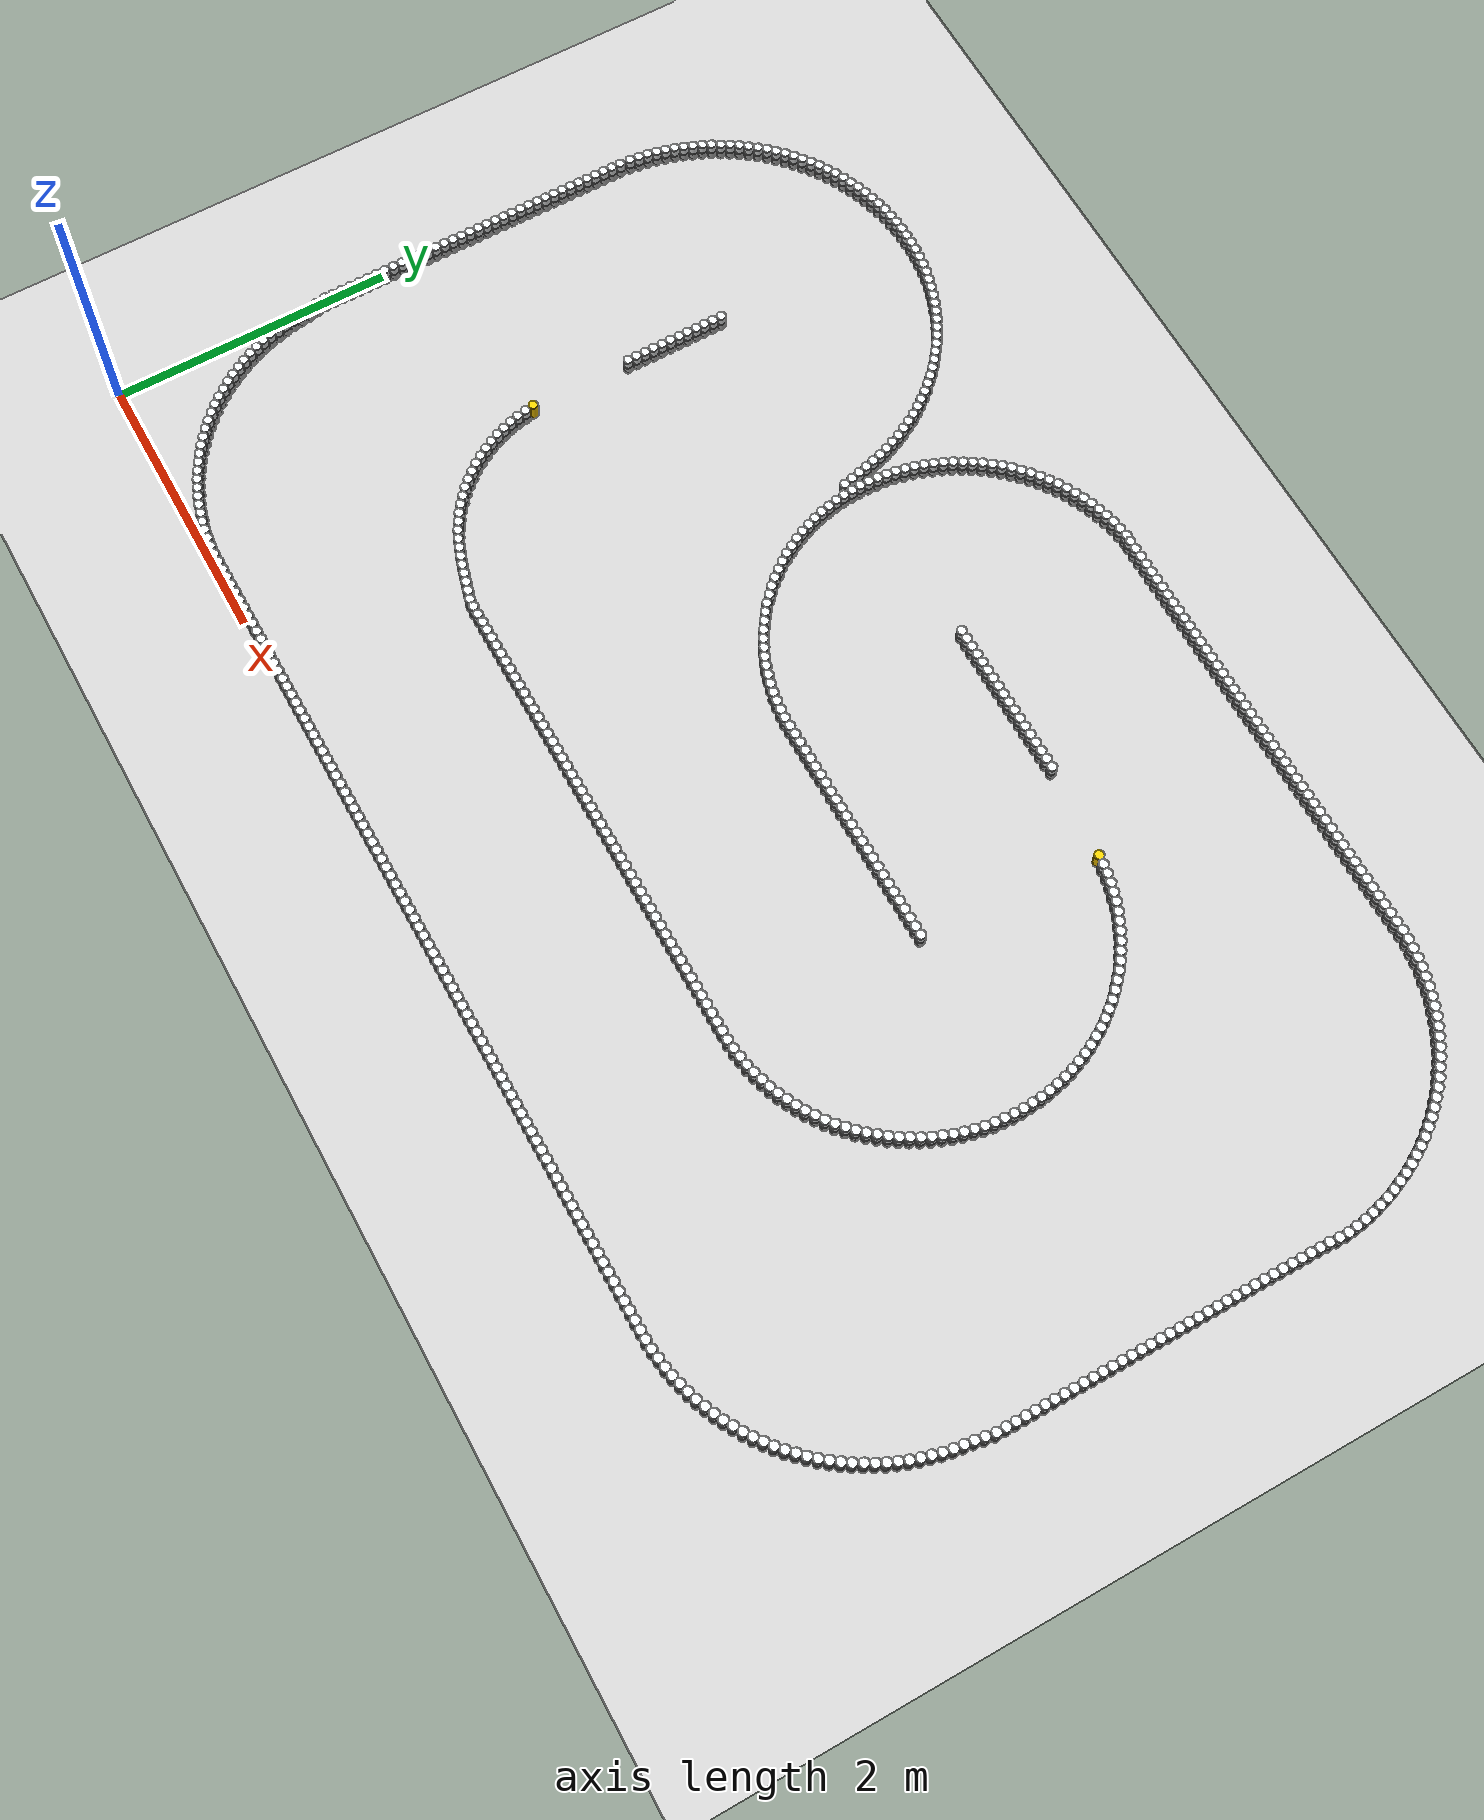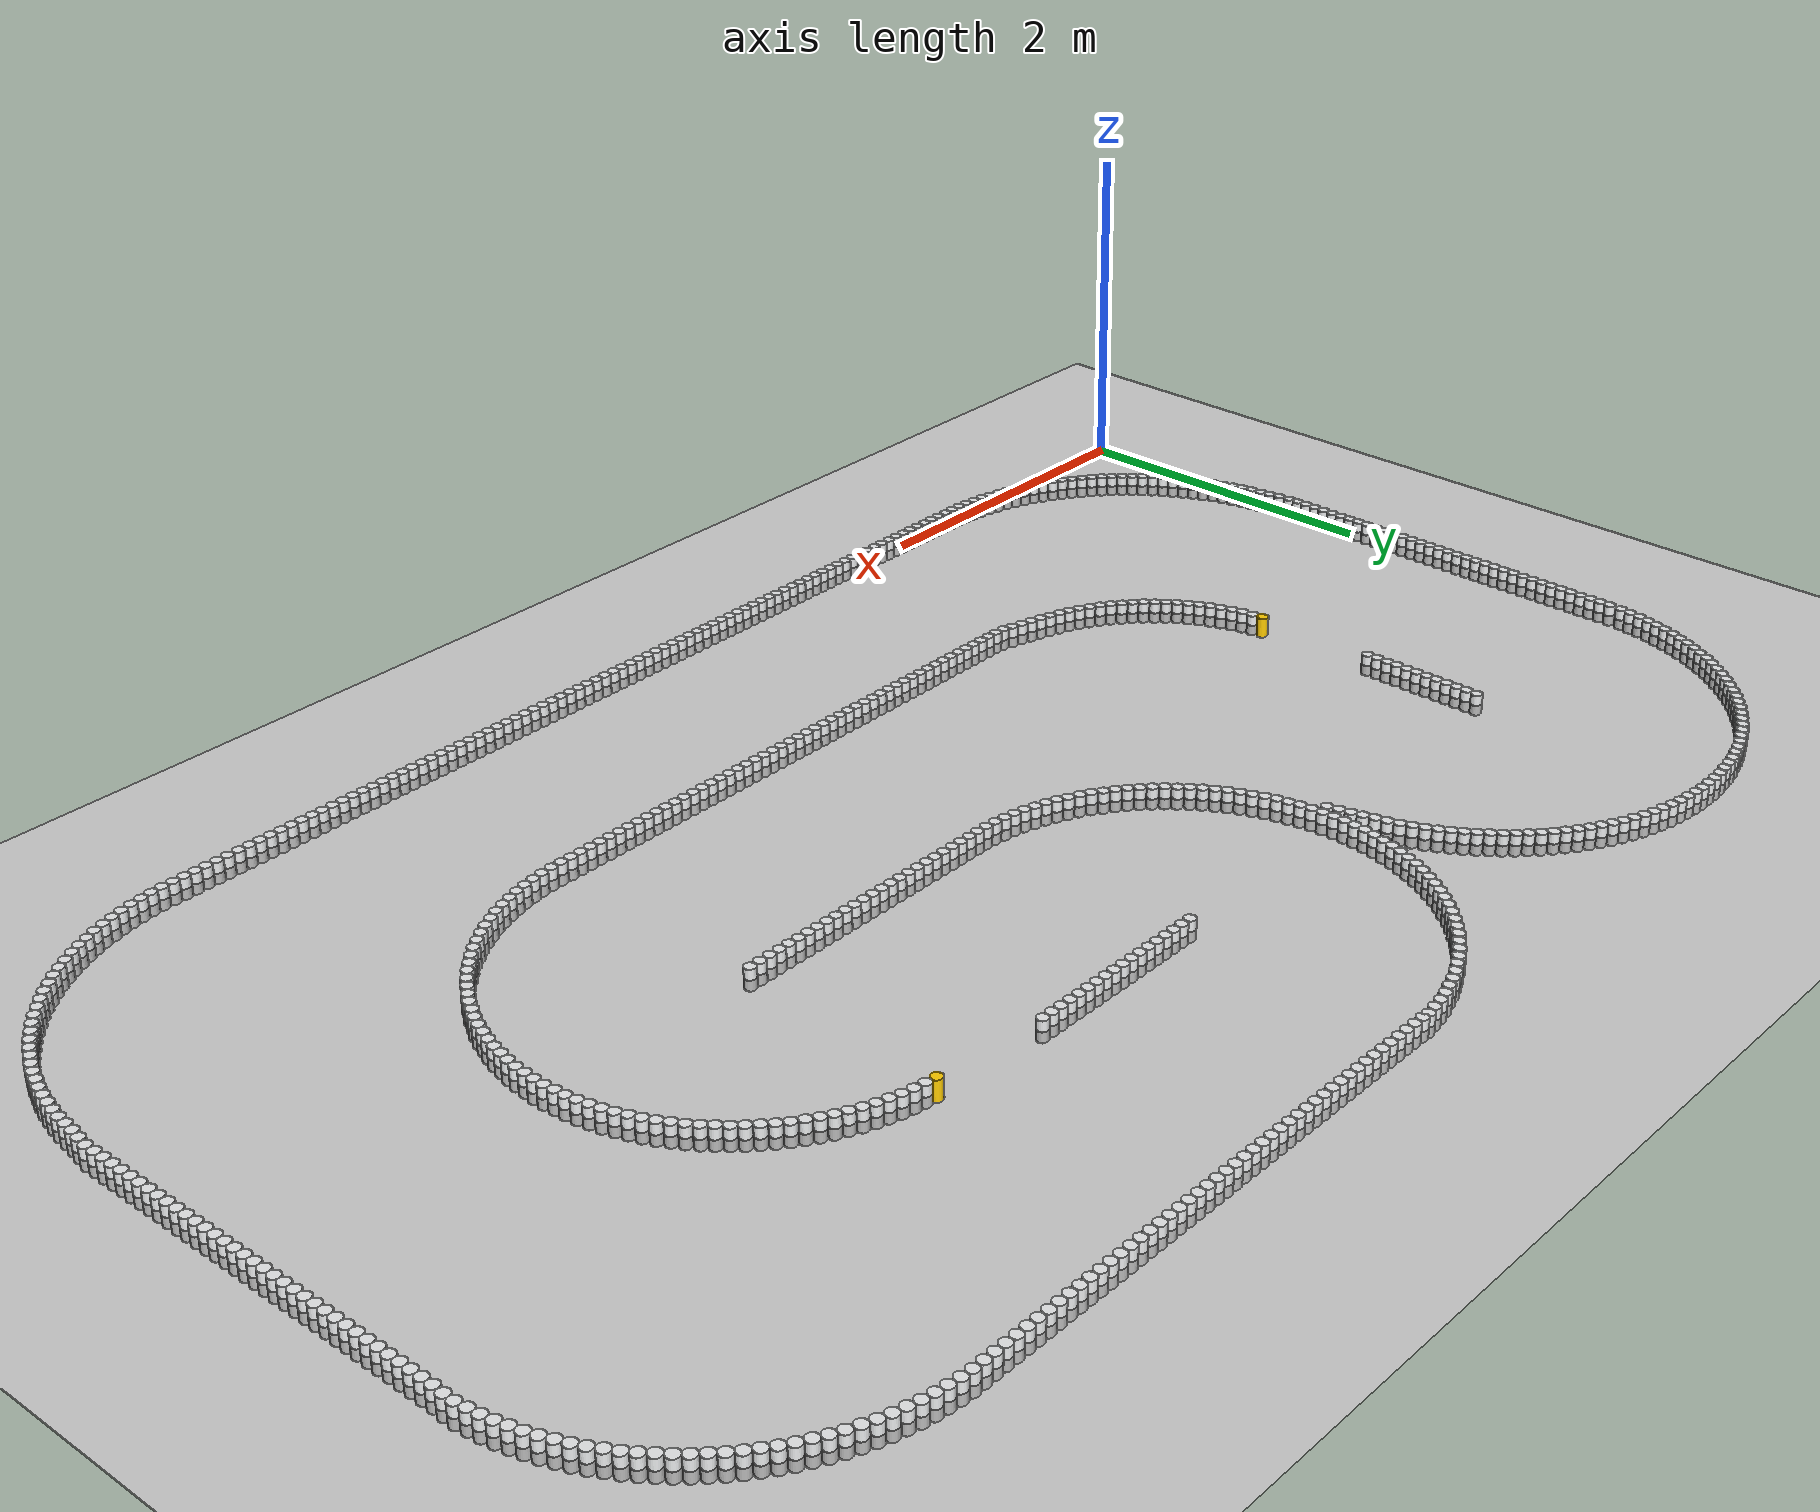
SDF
<sdf version="1.5">
 <world name="default">
  <scene><ambient>0.9 0.9 0.9 1</ambient><background>0.95 0.95 0.9 1</background></scene>
  <include><uri>model://sun</uri></include>
  <include><uri>model://racer_ground</uri></include>
  <include>
   <name>l_out_straight_1</name>
   <uri>model://6cans</uri>
   <pose>0.033 1.512 0 0 0 1.57079633</pose>
   <static>true</static>
  </include>
  <include>
   <name>l_out_straight_2</name>
   <uri>model://6cans</uri>
   <pose>0.033 1.908 0 0 0 1.57079633</pose>
   <static>true</static>
  </include>
  <include>
   <name>l_out_straight_3</name>
   <uri>model://6cans</uri>
   <pose>0.033 2.304 0 0 0 1.57079633</pose>
   <static>true</static>
  </include>
  <include>
   <name>l_out_straight_4</name>
   <uri>model://6cans</uri>
   <pose>0.033 2.700 0 0 0 1.57079633</pose>
   <static>true</static>
  </include>
  <include>
   <name>l_out_straight_5</name>
   <uri>model://6cans</uri>
   <pose>0.033 3.096 0 0 0 1.57079633</pose>
   <static>true</static>
  </include>
  <include>
   <name>l_out_straight_6</name>
   <uri>model://6cans</uri>
   <pose>0.033 3.492 0 0 0 1.57079633</pose>
   <static>true</static>
  </include>
  <include>
   <name>r_out_straight_1</name>
   <uri>model://6cans</uri>
   <pose>8.967 1.512 0 0 0 1.57079633</pose>
   <static>true</static>
  </include>
  <include>
   <name>r_out_straight_2</name>
   <uri>model://6cans</uri>
   <pose>8.967 1.908 0 0 0 1.57079633</pose>
   <static>true</static>
  </include>
  <include>
   <name>r_out_straight_3</name>
   <uri>model://6cans</uri>
   <pose>8.967 2.304 0 0 0 1.57079633</pose>
   <static>true</static>
  </include>
  <include>
   <name>r_out_straight_4</name>
   <uri>model://6cans</uri>
   <pose>8.967 2.700 0 0 0 1.57079633</pose>
   <static>true</static>
  </include>
  <include>
   <name>r_out_straight_5</name>
   <uri>model://6cans</uri>
   <pose>8.967 3.096 0 0 0 1.57079633</pose>
   <static>true</static>
  </include>
  <include>
   <name>r_out_straight_6</name>
   <uri>model://6cans</uri>
   <pose>8.967 3.492 0 0 0 1.57079633</pose>
   <static>true</static>
  </include>
  <include>
   <name>t_out_straight_1</name>
   <uri>model://6cans</uri>
   <pose>4.332 5.367 0 0 0 0</pose>
   <static>true</static>
  </include>
  <include>
   <name>t_out_straight_2</name>
   <uri>model://6cans</uri>
   <pose>4.728 5.367 0 0 0 0</pose>
   <static>true</static>
  </include>
  <include>
   <name>t_out_straight_3</name>
   <uri>model://6cans</uri>
   <pose>5.124 5.367 0 0 0 0</pose>
   <static>true</static>
  </include>
  <include>
   <name>t_out_straight_4</name>
   <uri>model://6cans</uri>
   <pose>5.520 5.367 0 0 0 0</pose>
   <static>true</static>
  </include>
  <include>
   <name>t_out_straight_5</name>
   <uri>model://6cans</uri>
   <pose>5.916 5.367 0 0 0 0</pose>
   <static>true</static>
  </include>
  <include>
   <name>t_out_straight_6</name>
   <uri>model://6cans</uri>
   <pose>6.312 5.367 0 0 0 0</pose>
   <static>true</static>
  </include>
  <include>
   <name>t_out_straight_7</name>
   <uri>model://6cans</uri>
   <pose>6.708 5.367 0 0 0 0</pose>
   <static>true</static>
  </include>
  <include>
   <name>t_out_straight_8</name>
   <uri>model://6cans</uri>
   <pose>7.104 5.367 0 0 0 0</pose>
   <static>true</static>
  </include>
  <include>
   <name>t_out_straight_9</name>
   <uri>model://1can</uri>
   <pose>7.5 5.367 0 0 0 0</pose>
   <static>true</static>
  </include>
  <include>
   <name>b_out_straight_1</name>
   <uri>model://6cans</uri>
   <pose>1.530 0.033 0 0 0 0</pose>
   <static>true</static>
  </include>
  <include>
   <name>b_out_straight_2</name>
   <uri>model://6cans</uri>
   <pose>1.926 0.033 0 0 0 0</pose>
   <static>true</static>
  </include>
  <include>
   <name>b_out_straight_3</name>
   <uri>model://6cans</uri>
   <pose>2.322 0.033 0 0 0 0</pose>
   <static>true</static>
  </include>
  <include>
   <name>b_out_straight_4</name>
   <uri>model://6cans</uri>
   <pose>2.718 0.033 0 0 0 0</pose>
   <static>true</static>
  </include>
  <include>
   <name>b_out_straight_5</name>
   <uri>model://6cans</uri>
   <pose>3.114 0.033 0 0 0 0</pose>
   <static>true</static>
  </include>
  <include>
   <name>b_out_straight_6</name>
   <uri>model://6cans</uri>
   <pose>3.510 0.033 0 0 0 0</pose>
   <static>true</static>
  </include>
  <include>
   <name>b_out_straight_7</name>
   <uri>model://6cans</uri>
   <pose>3.906 0.033 0 0 0 0</pose>
   <static>true</static>
  </include>
  <include>
   <name>b_out_straight_8</name>
   <uri>model://6cans</uri>
   <pose>4.302 0.033 0 0 0 0</pose>
   <static>true</static>
  </include>
  <include>
   <name>b_out_straight_9</name>
   <uri>model://6cans</uri>
   <pose>4.698 0.033 0 0 0 0</pose>
   <static>true</static>
  </include>
  <include>
   <name>b_out_straight_10</name>
   <uri>model://6cans</uri>
   <pose>5.094 0.033 0 0 0 0</pose>
   <static>true</static>
  </include>
  <include>
   <name>b_out_straight_11</name>
   <uri>model://6cans</uri>
   <pose>5.490 0.033 0 0 0 0</pose>
   <static>true</static>
  </include>
  <include>
   <name>b_out_straight_12</name>
   <uri>model://6cans</uri>
   <pose>5.886 0.033 0 0 0 0</pose>
   <static>true</static>
  </include>
  <include>
   <name>b_out_straight_13</name>
   <uri>model://6cans</uri>
   <pose>6.282 0.033 0 0 0 0</pose>
   <static>true</static>
  </include>
  <include>
   <name>b_out_straight_14</name>
   <uri>model://6cans</uri>
   <pose>6.678 0.033 0 0 0 0</pose>
   <static>true</static>
  </include>
  <include>
   <name>b_out_straight_15</name>
   <uri>model://6cans</uri>
   <pose>7.074 0.033 0 0 0 0</pose>
   <static>true</static>
  </include>
  <include>
   <name>b_out_straight_16</name>
   <uri>model://1can</uri>
   <pose>7.470 0.033 0 0 0 0</pose>
   <static>true</static>
  </include>
  <include>
   <name>l_in_straight_1</name>
   <uri>model://6cans</uri>
   <pose>1.500 3.100 0 0 0 1.57079633</pose>
   <static>true</static>
  </include>
  <include>
   <name>l_in_straight_2</name>
   <uri>model://6cans</uri>
   <pose>1.500 3.496 0 0 0 1.57079633</pose>
   <static>true</static>
  </include>
  <include>
   <name>t_in_straight_1</name>
   <uri>model://6cans</uri>
   <pose>4.362 4.050 0 0 0 0</pose>
   <static>true</static>
  </include>
  <include>
   <name>t_in_straight_2</name>
   <uri>model://6cans</uri>
   <pose>4.758 4.050 0 0 0 0</pose>
   <static>true</static>
  </include>
  <include>
   <name>t_in_straight_3</name>
   <uri>model://6cans</uri>
   <pose>5.154 4.050 0 0 0 0</pose>
   <static>true</static>
  </include>
  <include>
   <name>m_in_straight_1</name>
   <uri>model://6cans</uri>
   <pose>4.350 2.733 0 0 0 0</pose>
   <static>true</static>
  </include>
  <include>
   <name>m_in_straight_2</name>
   <uri>model://6cans</uri>
   <pose>4.746 2.733 0 0 0 0</pose>
   <static>true</static>
  </include>
  <include>
   <name>m_in_straight_3</name>
   <uri>model://6cans</uri>
   <pose>5.142 2.733 0 0 0 0</pose>
   <static>true</static>
  </include>
  <include>
   <name>m_in_straight_4</name>
   <uri>model://6cans</uri>
   <pose>5.538 2.733 0 0 0 0</pose>
   <static>true</static>
  </include>
  <include>
   <name>m_in_straight_5</name>
   <uri>model://3cans</uri>
   <pose>5.934 2.733 0 0 0 0</pose>
   <static>true</static>
  </include>
  <include>
   <name>b_in_straight_1</name>
   <uri>model://6cans</uri>
   <pose>2.650 1.350 0 0 0 0</pose>
   <static>true</static>
  </include>
  <include>
   <name>b_in_straight_2</name>
   <uri>model://6cans</uri>
   <pose>3.046 1.350 0 0 0 0</pose>
   <static>true</static>
  </include>
  <include>
   <name>b_in_straight_3</name>
   <uri>model://6cans</uri>
   <pose>3.442 1.350 0 0 0 0</pose>
   <static>true</static>
  </include>
  <include>
   <name>b_in_straight_4</name>
   <uri>model://6cans</uri>
   <pose>3.838 1.350 0 0 0 0</pose>
   <static>true</static>
  </include>
  <include>
   <name>b_in_straight_5</name>
   <uri>model://6cans</uri>
   <pose>4.234 1.350 0 0 0 0</pose>
   <static>true</static>
  </include>
  <include>
   <name>b_in_straight_6</name>
   <uri>model://6cans</uri>
   <pose>4.630 1.350 0 0 0 0</pose>
   <static>true</static>
  </include>
  <include>
   <name>b_in_straight_7</name>
   <uri>model://6cans</uri>
   <pose>5.026 1.350 0 0 0 0</pose>
   <static>true</static>
  </include>
  <include>
   <name>b_in_straight_8</name>
   <uri>model://6cans</uri>
   <pose>5.422 1.350 0 0 0 0</pose>
   <static>true</static>
  </include>
  <include>
   <name>b_in_straight_9</name>
   <uri>model://3cans</uri>
   <pose>5.818 1.350 0 0 0 0</pose>
   <static>true</static>
  </include>
  <include>
   <name>b_in_straight_10</name>
   <uri>model://1can</uri>
   <pose>6.016 1.350 0 0 0 0</pose>
   <static>true</static>
  </include>
  <include>
   <name>b_in_straight_11</name>
   <uri>model://1can</uri>
   <pose>6.082 1.350 0 0 0 0</pose>
   <static>true</static>
  </include>
  <include>
   <name>lb_out_curve_0</name>
   <uri>model://1can</uri>
   <pose>1.464 0.033 0 0 0 0</pose>
   <static>true</static>
  </include>
  <include>
   <name>lb_out_curve_1</name>
   <uri>model://3cans</uri>
   <pose>1.464 0.033 0 0 0 3.0107</pose>
   <static>true</static>
  </include>
  <include>
   <name>lb_out_curve_2</name>
   <uri>model://3cans</uri>
   <pose>1.2677 0.0588 0 0 0 2.8798</pose>
   <static>true</static>
  </include>
  <include>
   <name>lb_out_curve_3</name>
   <uri>model://3cans</uri>
   <pose>1.0764 0.11 0 0 0 2.7489</pose>
   <static>true</static>
  </include>
  <include>
   <name>lb_out_curve_4</name>
   <uri>model://3cans</uri>
   <pose>0.8935 0.1858 0 0 0 2.6180</pose>
   <static>true</static>
  </include>
  <include>
   <name>lb_out_curve_5</name>
   <uri>model://3cans</uri>
   <pose>0.722 0.2848 0 0 0 2.4871</pose>
   <static>true</static>
  </include>
  <include>
   <name>lb_out_curve_6</name>
   <uri>model://3cans</uri>
   <pose>0.5649 0.4053 0 0 0 2.3562</pose>
   <static>true</static>
  </include>
  <include>
   <name>lb_out_curve_7</name>
   <uri>model://3cans</uri>
   <pose>0.4249 0.5453 0 0 0 2.2253</pose>
   <static>true</static>
  </include>
  <include>
   <name>lb_out_curve_8</name>
   <uri>model://3cans</uri>
   <pose>0.3044 0.7024 0 0 0 2.0944</pose>
   <static>true</static>
  </include>
  <include>
   <name>lb_out_curve_9</name>
   <uri>model://3cans</uri>
   <pose>0.2054 0.8739 0 0 0 1.9635</pose>
   <static>true</static>
  </include>
  <include>
   <name>lb_out_curve_10</name>
   <uri>model://3cans</uri>
   <pose>0.1296 1.0568 0 0 0 1.8326</pose>
   <static>true</static>
  </include>
  <include>
   <name>lb_out_curve_11</name>
   <uri>model://3cans</uri>
   <pose>0.0784 1.2481 0 0 0 1.7017</pose>
   <static>true</static>
  </include>
  <include>
   <name>lb_out_curve_12</name>
   <uri>model://1can</uri>
   <pose>0.0526 1.4444 0 0 0 1.85</pose>
   <static>true</static>
  </include>
  <include>
   <name>lt_out_curve_1</name>
   <uri>model://3cans</uri>
   <pose>0.0330 3.9000 0 0 0 1.4399</pose>
   <static>true</static>
  </include>
  <include>
   <name>lt_out_curve_2</name>
   <uri>model://3cans</uri>
   <pose>0.0588 4.0963 0 0 0 1.3090</pose>
   <static>true</static>
  </include>
  <include>
   <name>lt_out_curve_3</name>
   <uri>model://3cans</uri>
   <pose>0.1101 4.2876 0 0 0 1.1781</pose>
   <static>true</static>
  </include>
  <include>
   <name>lt_out_curve_4</name>
   <uri>model://3cans</uri>
   <pose>0.1859 4.4705 0 0 0 1.0472</pose>
   <static>true</static>
  </include>
  <include>
   <name>lt_out_curve_5</name>
   <uri>model://3cans</uri>
   <pose>0.2849 4.6420 0 0 0 0.9163</pose>
   <static>true</static>
  </include>
  <include>
   <name>lt_out_curve_6</name>
   <uri>model://3cans</uri>
   <pose>0.4054 4.7990 0 0 0 0.7854</pose>
   <static>true</static>
  </include>
  <include>
   <name>lt_out_curve_7</name>
   <uri>model://3cans</uri>
   <pose>0.5454 4.9391 0 0 0 0.6545</pose>
   <static>true</static>
  </include>
  <include>
   <name>lt_out_curve_8</name>
   <uri>model://3cans</uri>
   <pose>0.7025 5.0596 0 0 0 0.5236</pose>
   <static>true</static>
  </include>
  <include>
   <name>lt_out_curve_9</name>
   <uri>model://3cans</uri>
   <pose>0.8740 5.1586 0 0 0 0.3927</pose>
   <static>true</static>
  </include>
  <include>
   <name>lt_out_curve_10</name>
   <uri>model://3cans</uri>
   <pose>1.0569 5.2344 0 0 0 0.2618</pose>
   <static>true</static>
  </include>
  <include>
   <name>lt_out_curve_11</name>
   <uri>model://3cans</uri>
   <pose>1.2481 5.2856 0 0 0 0.1309</pose>
   <static>true</static>
  </include>
  <include>
   <name>lt_out_curve_12</name>
   <uri>model://3cans</uri>
   <pose>1.4444 5.3114 0 0 0 0.0000</pose>
   <static>true</static>
  </include>
  <include>
   <name>lt_out_curve_13</name>
   <uri>model://3cans</uri>
   <pose>1.6424 5.3114 0 0 0 -0.1309</pose>
   <static>true</static>
  </include>
  <include>
   <name>lt_out_curve_14</name>
   <uri>model://3cans</uri>
   <pose>1.8388 5.2856 0 0 0 -0.2618</pose>
   <static>true</static>
  </include>
  <include>
   <name>lt_out_curve_15</name>
   <uri>model://3cans</uri>
   <pose>2.0300 5.2344 0 0 0 -0.3927</pose>
   <static>true</static>
  </include>
  <include>
   <name>lt_out_curve_16</name>
   <uri>model://3cans</uri>
   <pose>2.2129 5.1586 0 0 0 -0.5236</pose>
   <static>true</static>
  </include>
  <include>
   <name>lt_out_curve_17</name>
   <uri>model://3cans</uri>
   <pose>2.3844 5.0596 0 0 0 -0.6545</pose>
   <static>true</static>
  </include>
  <include>
   <name>lt_out_curve_18</name>
   <uri>model://3cans</uri>
   <pose>2.5415 4.9391 0 0 0 -0.7854</pose>
   <static>true</static>
  </include>
  <include>
   <name>lt_out_curve_19</name>
   <uri>model://3cans</uri>
   <pose>2.6815 4.7990 0 0 0 -0.9163</pose>
   <static>true</static>
  </include>
  <include>
   <name>lt_out_curve_20</name>
   <uri>model://3cans</uri>
   <pose>2.8020 4.6420 0 0 0 -1.0472</pose>
   <static>true</static>
  </include>
  <include>
   <name>lt_out_curve_21</name>
   <uri>model://3cans</uri>
   <pose>2.9010 4.4705 0 0 0 -1.1781</pose>
   <static>true</static>
  </include>
  <include>
   <name>lt_out_curve_22</name>
   <uri>model://3cans</uri>
   <pose>2.9768 4.2876 0 0 0 -1.3090</pose>
   <static>true</static>
  </include>
  <include>
   <name>lt_out_curve_23</name>
   <uri>model://3cans</uri>
   <pose>3.0281 4.0963 0 0 0 -1.325</pose>
   <static>true</static>
  </include>
  <include>
   <name>rb_out_curve_1</name>
   <uri>model://3cans</uri>
   <pose>7.5360 0.0330 0 0 0 0.1309</pose>
   <static>true</static>
  </include>
  <include>
   <name>rb_out_curve_2</name>
   <uri>model://3cans</uri>
   <pose>7.7323 0.0588 0 0 0 0.2618</pose>
   <static>true</static>
  </include>
  <include>
   <name>rb_out_curve_3</name>
   <uri>model://3cans</uri>
   <pose>7.9236 0.1101 0 0 0 0.3927</pose>
   <static>true</static>
  </include>
  <include>
   <name>rb_out_curve_4</name>
   <uri>model://3cans</uri>
   <pose>8.1065 0.1859 0 0 0 0.5236</pose>
   <static>true</static>
  </include>
  <include>
   <name>rb_out_curve_5</name>
   <uri>model://3cans</uri>
   <pose>8.2780 0.2849 0 0 0 0.6545</pose>
   <static>true</static>
  </include>
  <include>
   <name>rb_out_curve_6</name>
   <uri>model://3cans</uri>
   <pose>8.4350 0.4054 0 0 0 0.7854</pose>
   <static>true</static>
  </include>
  <include>
   <name>rb_out_curve_7</name>
   <uri>model://3cans</uri>
   <pose>8.5751 0.5454 0 0 0 0.9163</pose>
   <static>true</static>
  </include>
  <include>
   <name>rb_out_curve_8</name>
   <uri>model://3cans</uri>
   <pose>8.6956 0.7025 0 0 0 1.0472</pose>
   <static>true</static>
  </include>
  <include>
   <name>rb_out_curve_9</name>
   <uri>model://3cans</uri>
   <pose>8.7946 0.8740 0 0 0 1.1781</pose>
   <static>true</static>
  </include>
  <include>
   <name>rb_out_curve_10</name>
   <uri>model://3cans</uri>
   <pose>8.8704 1.0569 0 0 0 1.3090</pose>
   <static>true</static>
  </include>
  <include>
   <name>rb_out_curve_11</name>
   <uri>model://3cans</uri>
   <pose>8.9216 1.2481 0 0 0 1.4399</pose>
   <static>true</static>
  </include>
  <include>
   <name>rb_out_curve_12</name>
   <uri>model://1can</uri>
   <pose>8.9474 1.4444 0 0 0 1.320800</pose>
   <static>true</static>
  </include>
  <include>
   <name>rt_out_curve_1</name>
   <uri>model://3cans</uri>
   <pose>7.5660 5.3670 0 0 0 -0.1309</pose>
   <static>true</static>
  </include>
  <include>
   <name>rt_out_curve_2</name>
   <uri>model://3cans</uri>
   <pose>7.7623 5.3412 0 0 0 -0.2618</pose>
   <static>true</static>
  </include>
  <include>
   <name>rt_out_curve_3</name>
   <uri>model://3cans</uri>
   <pose>7.9536 5.2899 0 0 0 -0.3927</pose>
   <static>true</static>
  </include>
  <include>
   <name>rt_out_curve_4</name>
   <uri>model://3cans</uri>
   <pose>8.1365 5.2141 0 0 0 -0.5236</pose>
   <static>true</static>
  </include>
  <include>
   <name>rt_out_curve_5</name>
   <uri>model://3cans</uri>
   <pose>8.3080 5.1151 0 0 0 -0.6545</pose>
   <static>true</static>
  </include>
  <include>
   <name>rt_out_curve_6</name>
   <uri>model://3cans</uri>
   <pose>8.4650 4.9946 0 0 0 -0.7854</pose>
   <static>true</static>
  </include>
  <include>
   <name>rt_out_curve_7</name>
   <uri>model://3cans</uri>
   <pose>8.6051 4.8546 0 0 0 -0.9163</pose>
   <static>true</static>
  </include>
  <include>
   <name>rt_out_curve_8</name>
   <uri>model://3cans</uri>
   <pose>8.7256 4.6975 0 0 0 -1.0472</pose>
   <static>true</static>
  </include>
  <include>
   <name>rt_out_curve_9</name>
   <uri>model://3cans</uri>
   <pose>8.8246 4.5260 0 0 0 -1.1781</pose>
   <static>true</static>
  </include>
  <include>
   <name>rt_out_curve_10</name>
   <uri>model://3cans</uri>
   <pose>8.9004 4.3431 0 0 0 -1.3090</pose>
   <static>true</static>
  </include>
  <include>
   <name>rt_out_curve_11</name>
   <uri>model://3cans</uri>
   <pose>8.9516 4.1519 0 0 0 -1.4399</pose>
   <static>true</static>
  </include>
  <include>
   <name>rt_out_curve_12</name>
   <uri>model://1can</uri>
   <pose>8.9774 3.9556 0 0 0 -1.720801</pose>
   <static>true</static>
  </include>
  <include>
   <name>lb_in_curve_1</name>
   <uri>model://3cans_shortcut</uri>
   <pose>1.5000 2.4340 0 0 0 -1.3963</pose>
   <static>true</static>
  </include>
  <include>
   <name>lb_in_curve_2</name>
   <uri>model://3cans</uri>
   <pose>1.5344 2.2390 0 0 0 -1.2217</pose>
   <static>true</static>
  </include>
  <include>
   <name>lb_in_curve_3</name>
   <uri>model://3cans</uri>
   <pose>1.6021 2.0529 0 0 0 -1.0472</pose>
   <static>true</static>
  </include>
  <include>
   <name>lb_in_curve_4</name>
   <uri>model://3cans</uri>
   <pose>1.7011 1.8815 0 0 0 -0.8727</pose>
   <static>true</static>
  </include>
  <include>
   <name>lb_in_curve_5</name>
   <uri>model://3cans</uri>
   <pose>1.8284 1.7298 0 0 0 -0.6981</pose>
   <static>true</static>
  </include>
  <include>
   <name>lb_in_curve_6</name>
   <uri>model://3cans</uri>
   <pose>1.9801 1.6025 0 0 0 -0.5236</pose>
   <static>true</static>
  </include>
  <include>
   <name>lb_in_curve_7</name>
   <uri>model://3cans</uri>
   <pose>2.1515 1.5035 0 0 0 -0.3491</pose>
   <static>true</static>
  </include>
  <include>
   <name>lb_in_curve_8</name>
   <uri>model://5cans</uri>
   <pose>2.3376 1.4358 0 0 0 -0.274499</pose>
   <static>true</static>
  </include>
  <include>
   <name>r_in_curve_1</name>
   <uri>model://3cans</uri>
   <pose>6.1500 1.3500 0 0 0 0.1496</pose>
   <static>true</static>
  </include>
  <include>
   <name>r_in_curve_2</name>
   <uri>model://3cans</uri>
   <pose>6.3458 1.3795 0 0 0 0.2992</pose>
   <static>true</static>
  </include>
  <include>
   <name>r_in_curve_3</name>
   <uri>model://3cans</uri>
   <pose>6.5350 1.4379 0 0 0 0.4488</pose>
   <static>true</static>
  </include>
  <include>
   <name>r_in_curve_4</name>
   <uri>model://3cans</uri>
   <pose>6.7134 1.5238 0 0 0 0.5984</pose>
   <static>true</static>
  </include>
  <include>
   <name>r_in_curve_5</name>
   <uri>model://3cans</uri>
   <pose>6.8770 1.6353 0 0 0 0.7480</pose>
   <static>true</static>
  </include>
  <include>
   <name>r_in_curve_6</name>
   <uri>model://3cans</uri>
   <pose>7.0221 1.7700 0 0 0 0.8976</pose>
   <static>true</static>
  </include>
  <include>
   <name>r_in_curve_7</name>
   <uri>model://3cans</uri>
   <pose>7.1456 1.9248 0 0 0 1.0472</pose>
   <static>true</static>
  </include>
  <include>
   <name>r_in_curve_8</name>
   <uri>model://3cans</uri>
   <pose>7.2446 2.0963 0 0 0 1.1968</pose>
   <static>true</static>
  </include>
  <include>
   <name>r_in_curve_9</name>
   <uri>model://3cans</uri>
   <pose>7.3169 2.2806 0 0 0 1.3464</pose>
   <static>true</static>
  </include>
  <include>
   <name>r_in_curve_10</name>
   <uri>model://3cans</uri>
   <pose>7.3610 2.4736 0 0 0 1.4960</pose>
   <static>true</static>
  </include>
  <include>
   <name>r_in_curve_11</name>
   <uri>model://3cans</uri>
   <pose>7.3758 2.6711 0 0 0 1.6456</pose>
   <static>true</static>
  </include>
  <include>
   <name>r_in_curve_12</name>
   <uri>model://3cans</uri>
   <pose>7.3610 2.8685 0 0 0 1.7952</pose>
   <static>true</static>
  </include>
  <include>
   <name>r_in_curve_13</name>
   <uri>model://3cans</uri>
   <pose>7.3169 3.0615 0 0 0 1.9448</pose>
   <static>true</static>
  </include>
  <include>
   <name>r_in_curve_14</name>
   <uri>model://3cans</uri>
   <pose>7.2446 3.2459 0 0 0 2.0944</pose>
   <static>true</static>
  </include>
  <include>
   <name>r_in_curve_15</name>
   <uri>model://3cans</uri>
   <pose>7.1456 3.4173 0 0 0 2.2440</pose>
   <static>true</static>
  </include>
  <include>
   <name>r_in_curve_16</name>
   <uri>model://3cans</uri>
   <pose>7.0221 3.5721 0 0 0 2.3936</pose>
   <static>true</static>
  </include>
  <include>
   <name>r_in_curve_17</name>
   <uri>model://3cans</uri>
   <pose>6.8770 3.7068 0 0 0 2.5432</pose>
   <static>true</static>
  </include>
  <include>
   <name>r_in_curve_18</name>
   <uri>model://3cans</uri>
   <pose>6.7134 3.8183 0 0 0 2.6928</pose>
   <static>true</static>
  </include>
  <include>
   <name>r_in_curve_19</name>
   <uri>model://3cans</uri>
   <pose>6.5350 3.9043 0 0 0 2.8424</pose>
   <static>true</static>
  </include>
  <include>
   <name>r_in_curve_20</name>
   <uri>model://3cans_shortcut</uri>
   <pose>6.1500 3.9921 0 0 0 6.1335</pose>
   <static>true</static>
  </include>
  <include>
   <name>m_out_curve_1</name>
   <uri>model://3cans</uri>
   <pose>4.3500 2.7330 0 0 0 2.9920</pose>
   <static>true</static>
  </include>
  <include>
   <name>m_out_curve_2</name>
   <uri>model://3cans</uri>
   <pose>4.1542 2.7625 0 0 0 2.8424</pose>
   <static>true</static>
  </include>
  <include>
   <name>m_out_curve_3</name>
   <uri>model://3cans</uri>
   <pose>3.9650 2.8209 0 0 0 2.6928</pose>
   <static>true</static>
  </include>
  <include>
   <name>m_out_curve_4</name>
   <uri>model://3cans</uri>
   <pose>3.7866 2.9068 0 0 0 2.5432</pose>
   <static>true</static>
  </include>
  <include>
   <name>m_out_curve_5</name>
   <uri>model://3cans</uri>
   <pose>3.6230 3.0183 0 0 0 2.3936</pose>
   <static>true</static>
  </include>
  <include>
   <name>m_out_curve_6</name>
   <uri>model://3cans</uri>
   <pose>3.4779 3.1530 0 0 0 2.2440</pose>
   <static>true</static>
  </include>
  <include>
   <name>m_out_curve_7</name>
   <uri>model://3cans</uri>
   <pose>3.3544 3.3078 0 0 0 2.0944</pose>
   <static>true</static>
  </include>
  <include>
   <name>m_out_curve_8</name>
   <uri>model://3cans</uri>
   <pose>3.2554 3.4793 0 0 0 1.9448</pose>
   <static>true</static>
  </include>
  <include>
   <name>m_out_curve_9</name>
   <uri>model://3cans</uri>
   <pose>3.1831 3.6636 0 0 0 1.7952</pose>
   <static>true</static>
  </include>
  <include>
   <name>m_out_curve_10</name>
   <uri>model://3cans</uri>
   <pose>3.1390 3.8566 0 0 0 1.6456</pose>
   <static>true</static>
  </include>
  <include>
   <name>m_out_curve_11</name>
   <uri>model://3cans</uri>
   <pose>3.1242 4.0541 0 0 0 1.4960</pose>
   <static>true</static>
  </include>
  <include>
   <name>m_out_curve_12</name>
   <uri>model://3cans</uri>
   <pose>3.1390 4.2515 0 0 0 1.3464</pose>
   <static>true</static>
  </include>
  <include>
   <name>m_out_curve_13</name>
   <uri>model://3cans</uri>
   <pose>3.1831 4.4445 0 0 0 1.1968</pose>
   <static>true</static>
  </include>
  <include>
   <name>m_out_curve_14</name>
   <uri>model://3cans</uri>
   <pose>3.2554 4.6289 0 0 0 1.0472</pose>
   <static>true</static>
  </include>
  <include>
   <name>m_out_curve_15</name>
   <uri>model://3cans</uri>
   <pose>3.3544 4.8003 0 0 0 0.8976</pose>
   <static>true</static>
  </include>
  <include>
   <name>m_out_curve_16</name>
   <uri>model://3cans</uri>
   <pose>3.4779 4.9551 0 0 0 0.7480</pose>
   <static>true</static>
  </include>
  <include>
   <name>m_out_curve_17</name>
   <uri>model://3cans</uri>
   <pose>3.6230 5.0898 0 0 0 0.5984</pose>
   <static>true</static>
  </include>
  <include>
   <name>m_out_curve_18</name>
   <uri>model://3cans</uri>
   <pose>3.7866 5.2013 0 0 0 0.4488</pose>
   <static>true</static>
  </include>
  <include>
   <name>m_out_curve_19</name>
   <uri>model://3cans</uri>
   <pose>3.9650 5.2873 0 0 0 0.2992</pose>
   <static>true</static>
  </include>
  <include>
   <name>m_out_curve_20</name>
   <uri>model://3cans</uri>
   <pose>4.1542 5.3456 0 0 0 0.1496</pose>
   <static>true</static>
  </include>
 </world>
</sdf>

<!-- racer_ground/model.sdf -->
<sdf version="1.5">
  <model name="ground_plane">
    <static>true</static>
    <link name="link">
      <collision name="collision">
        <geometry>
          <plane>
            <normal>0 0 1</normal>
            <size>20 20</size>
          </plane>
        </geometry>
        <surface>
          <friction>
            <ode>
              <mu>100</mu>
              <mu2>50</mu2>
            </ode>
          </friction>
        </surface>
      </collision>
      <visual name="visual">
        <cast_shadows>false</cast_shadows>
        <geometry>
          <plane>
            <normal>0 0 1</normal>
            <size>20 20</size>
          </plane>
        </geometry>
        <material>
          <script>
            <uri>model://racer_ground/materials/scripts/course_ground.material</uri>
            <name>Ground/CourseGround</name>
          </script>
        </material>
      </visual>
    </link>
  </model>
</sdf>

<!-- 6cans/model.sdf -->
<sdf version="1.5">
<model name="6cans">
  <pose>0 0 0 0 0 0</pose>

    <include>
      <name>1st_can</name>
      <uri>model://1can</uri>
      <pose>0.0 0 0 0 0 0</pose>
      <static>true</static>
    </include>

    <include>
      <name>2nd_can</name>
      <uri>model://1can</uri>
      <pose>0.066 0 0 0 0 0</pose>
      <static>true</static>
    </include>

    <include>
      <name>3rd_can</name>
      <uri>model://1can</uri>
      <pose>0.132 0 0 0 0 0</pose>
      <static>true</static>
    </include>

    <include>
      <name>4th_can</name>
      <uri>model://1can</uri>
      <pose>0.198 0 0 0 0 0</pose>
      <static>true</static>
    </include>

    <include>
      <name>5th_can</name>
      <uri>model://1can</uri>
      <pose>0.264 0 0 0 0 0</pose>
      <static>true</static>
    </include>

    <include>
      <name>6th_can</name>
      <uri>model://1can</uri>
      <pose>0.330 0 0 0 0 0</pose>
      <static>true</static>
    </include>

  </model>
</sdf>

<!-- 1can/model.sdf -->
<sdf version="1.5">
<model name="1can">
  <pose>0 0 0 0 0 0</pose>
     <link name="1st_can_upper">
        <pose>0.033 0 0.0915 0 0 0</pose>

        <collision name="collision">
          <geometry>
            <cylinder>
              <radius>0.033</radius>
              <length>0.061</length>
            </cylinder>
          </geometry>
        </collision>

        <visual name="visual">
          <geometry>
            <cylinder>
              <radius>0.033</radius>
              <length>0.061</length>
            </cylinder>
          </geometry>
          <material>
            <ambient>0.8 0.8 0.8 1</ambient>
            <diffuse>0.913 0.921 0.925 1</diffuse>
            <specular>1.0 1.0 1.0 0.8</specular>
            <emissive>0.0 0.0 0.0 1</emissive>
          </material>
        </visual>

      </link>

      <link name="1st_can_lower">
        <pose>0.033 0 0.0305 0 0 0</pose>

        <collision name="collision">
          <geometry>
            <cylinder>
              <radius>0.033</radius>
              <length>0.061</length>
            </cylinder>
          </geometry>
        </collision>

        <visual name="visual">
          <geometry>
            <cylinder>
              <radius>0.033</radius>
              <length>0.061</length>
            </cylinder>
          </geometry>
          <material>
            <script>
              <uri>model://1can/materials/scripts/tape.material</uri>
              <name>1can/Tape</name>
            </script>
          </material>
        </visual>

      </link>

  </model>
</sdf>

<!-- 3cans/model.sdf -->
<sdf version="1.5">
<model name="3cans">
  <pose>0 0 0 0 0 0</pose>

      <include>
        <name>1st_can</name>
        <uri>model://1can</uri>
        <pose>0.0 0 0 0 0 0</pose>
        <static>true</static>
      </include>

      <include>
        <name>2nd_can</name>
        <uri>model://1can</uri>
        <pose>0.066 0 0 0 0 0</pose>
        <static>true</static>
      </include>

      <include>
        <name>3rd_can</name>
        <uri>model://1can</uri>
        <pose>0.132 0 0 0 0 0</pose>
        <static>true</static>
      </include>

  </model>
</sdf>

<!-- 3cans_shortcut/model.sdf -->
<sdf version="1.5">
<model name="3cans_shortcut">
  <pose>0 0 0 0 0 0</pose>

      <include>
        <name>1st_can</name>
        <uri>model://yellow_can</uri>
        <pose>0.0 0 0 0 0 0</pose>
        <static>true</static>
      </include>

      <include>
        <name>2nd_can</name>
        <uri>model://1can</uri>
        <pose>0.066 0 0 0 0 0</pose>
        <static>true</static>
      </include>

      <include>
        <name>3rd_can</name>
        <uri>model://1can</uri>
        <pose>0.132 0 0 0 0 0</pose>
        <static>true</static>
      </include>

  </model>
</sdf>

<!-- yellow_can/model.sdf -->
<sdf version="1.5">
<model name="yellow_can">
  <pose>0 0 0 0 0 0</pose>

      <link name="1st_can_lower">
        <pose>0.033 0 0.061 0 0 0</pose>

        <collision name="collision">
          <geometry>
            <cylinder>
              <radius>0.033</radius>
              <length>0.122</length>
            </cylinder>
          </geometry>
        </collision>

        <visual name="visual">
          <geometry>
            <cylinder>
              <radius>0.033</radius>
              <length>0.122</length>
            </cylinder>
          </geometry>
          <material>
            <ambient>0.8 0.6 0 1</ambient>
            <diffuse>1 0.8 0 1</diffuse>
            <specular>0.5 0.5 0.5 0.8</specular>
            <emissive>0.1 0.1 0.1 1</emissive>
          </material>
        </visual>

      </link>

  </model>
</sdf>

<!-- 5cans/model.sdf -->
<sdf version="1.5">
<model name="5cans">
  <pose>0 0 0 0 0 0</pose>

    <include>
      <name>1st_can</name>
      <uri>model://1can</uri>
      <pose>0.0 0 0 0 0 0</pose>
      <static>true</static>
    </include>

    <include>
      <name>2nd_can</name>
      <uri>model://1can</uri>
      <pose>0.066 0 0 0 0 0</pose>
      <static>true</static>
    </include>

    <include>
      <name>3rd_can</name>
      <uri>model://1can</uri>
      <pose>0.132 0 0 0 0 0</pose>
      <static>true</static>
    </include>

    <include>
      <name>4th_can</name>
      <uri>model://1can</uri>
      <pose>0.198 0 0 0 0 0</pose>
      <static>true</static>
    </include>

    <include>
      <name>5th_can</name>
      <uri>model://1can</uri>
      <pose>0.264 0 0 0 0 0</pose>
      <static>true</static>
    </include>

  </model>
</sdf>
